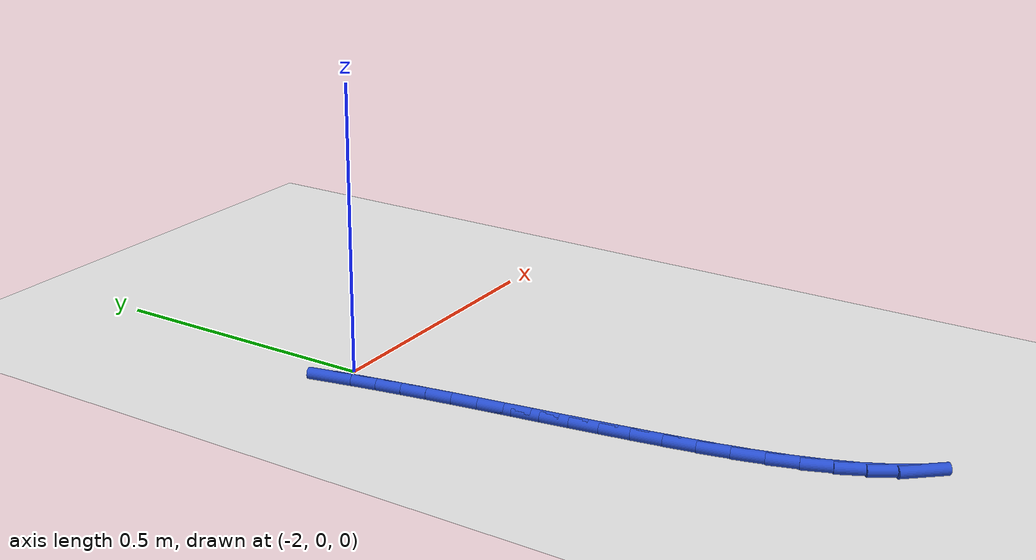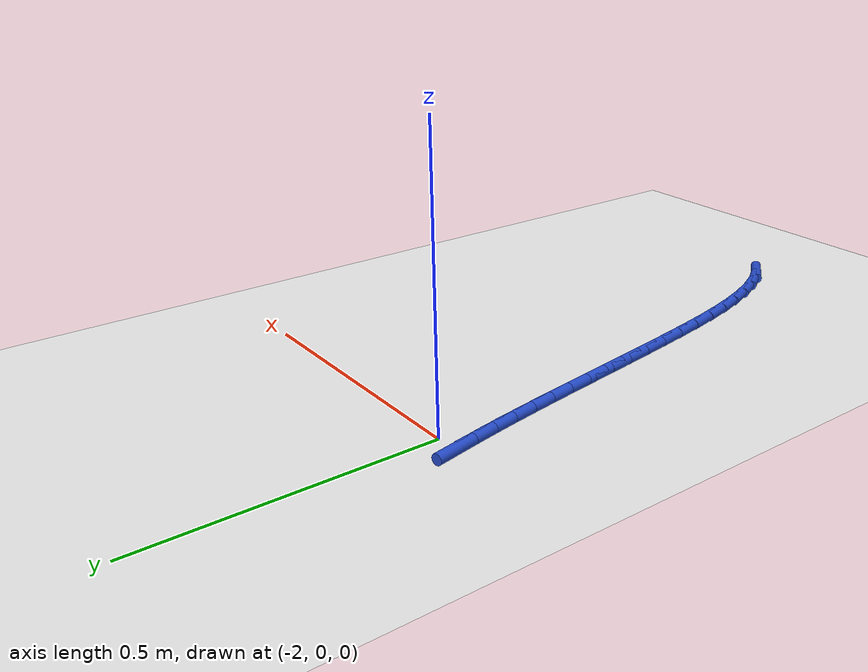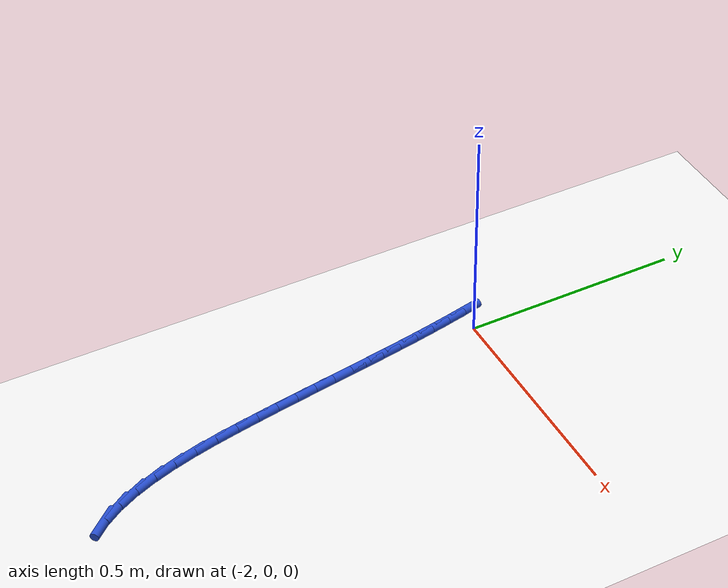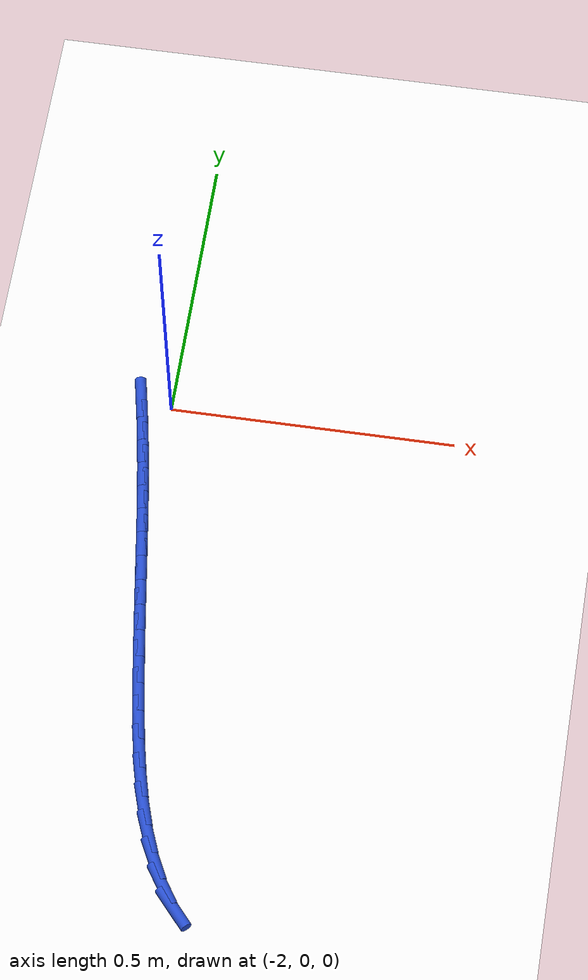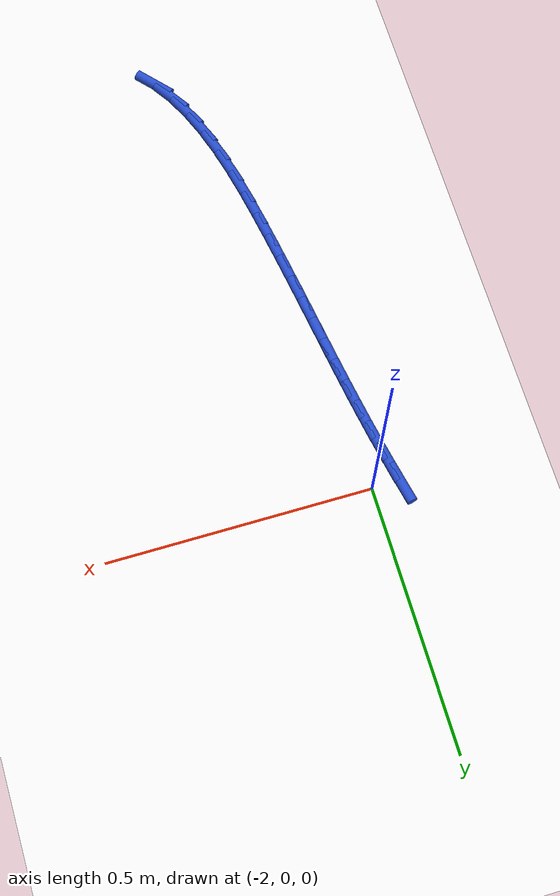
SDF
<sdf version="1.6">
 <world name="default">
  <model name="ground_plane">
   <static>1</static>
   <link name="link">
    <collision name="collision">
     <geometry><plane><normal>0 0 1</normal><size>100 100</size></plane></geometry>
     <surface><friction><ode><mu>100</mu><mu2>50</mu2></ode></friction></surface>
    </collision>
    <visual name="visual">
     <cast_shadows>0</cast_shadows>
     <geometry><plane><normal>0 0 1</normal><size>100 100</size></plane></geometry>
     <material>
      <script><uri>file://media/materials/scripts/gazebo.material</uri><name>Gazebo/WhiteGlow</name></script>
     </material>
    </visual>
   </link>
  </model>
  <model name="line">
   <link name="link_81">
    <pose>-2.0534396047391534 0.007192164463672855 0.01 0 1.57 -1.3655904365540195</pose>
    <collision name="collision">
     <geometry><cylinder><radius>0.01</radius><length>0.08</length></cylinder></geometry>
    </collision>
    <visual name="visual">
     <material>
      <script><name>Gazebo/Blue</name><uri>file://media/materials/scripts/gazebo.material</uri></script>
     </material>
     <geometry><cylinder><radius>0.01</radius><length>0.08</length></cylinder></geometry>
    </visual>
   </link>
   <link name="link_82">
    <pose>-2.044199597438086 -0.03720200226369862 0.01 0 1.57 -1.381125247913184</pose>
    <collision name="collision">
     <geometry><cylinder><radius>0.01</radius><length>0.08</length></cylinder></geometry>
    </collision>
    <visual name="visual">
     <material>
      <script><name>Gazebo/Blue</name><uri>file://media/materials/scripts/gazebo.material</uri></script>
     </material>
     <geometry><cylinder><radius>0.01</radius><length>0.08</length></cylinder></geometry>
    </visual>
   </link>
   <link name="link_83">
    <pose>-2.035672873930345 -0.08161693110765009 0.01 0 1.57 -1.3944435489759759</pose>
    <collision name="collision">
     <geometry><cylinder><radius>0.01</radius><length>0.08</length></cylinder></geometry>
    </collision>
    <visual name="visual">
     <material>
      <script><name>Gazebo/Blue</name><uri>file://media/materials/scripts/gazebo.material</uri></script>
     </material>
     <geometry><cylinder><radius>0.01</radius><length>0.08</length></cylinder></geometry>
    </visual>
   </link>
   <link name="link_84">
    <pose>-2.027736013886709 -0.12615498407838283 0.01 0 1.57 -1.405434057671806</pose>
    <collision name="collision">
     <geometry><cylinder><radius>0.01</radius><length>0.08</length></cylinder></geometry>
    </collision>
    <visual name="visual">
     <material>
      <script><name>Gazebo/Blue</name><uri>file://media/materials/scripts/gazebo.material</uri></script>
     </material>
     <geometry><cylinder><radius>0.01</radius><length>0.08</length></cylinder></geometry>
    </visual>
   </link>
   <link name="link_85">
    <pose>-2.0202655969779606 -0.1709185231860973 0.01 0 1.57 -1.4140278137770619</pose>
    <collision name="collision">
     <geometry><cylinder><radius>0.01</radius><length>0.08</length></cylinder></geometry>
    </collision>
    <visual name="visual">
     <material>
      <script><name>Gazebo/Blue</name><uri>file://media/materials/scripts/gazebo.material</uri></script>
     </material>
     <geometry><cylinder><radius>0.01</radius><length>0.08</length></cylinder></geometry>
    </visual>
   </link>
   <link name="link_86">
    <pose>-2.0131382028748788 -0.21600991044099396 0.01 0 1.57 -1.4201977074869372</pose>
    <collision name="collision">
     <geometry><cylinder><radius>0.01</radius><length>0.08</length></cylinder></geometry>
    </collision>
    <visual name="visual">
     <material>
      <script><name>Gazebo/Blue</name><uri>file://media/materials/scripts/gazebo.material</uri></script>
     </material>
     <geometry><cylinder><radius>0.01</radius><length>0.08</length></cylinder></geometry>
    </visual>
   </link>
   <link name="link_87">
    <pose>-2.006230411248243 -0.26153150785327395 0.01 0 1.57 -1.4239565959583875</pose>
    <collision name="collision">
     <geometry><cylinder><radius>0.01</radius><length>0.08</length></cylinder></geometry>
    </collision>
    <visual name="visual">
     <material>
      <script><name>Gazebo/Blue</name><uri>file://media/materials/scripts/gazebo.material</uri></script>
     </material>
     <geometry><cylinder><radius>0.01</radius><length>0.08</length></cylinder></geometry>
    </visual>
   </link>
   <link name="link_88">
    <pose>-1.9994188017688346 -0.3075856774331362 0.01 0 1.57 -1.4253542988864354</pose>
    <collision name="collision">
     <geometry><cylinder><radius>0.01</radius><length>0.08</length></cylinder></geometry>
    </collision>
    <visual name="visual">
     <material>
      <script><name>Gazebo/Blue</name><uri>file://media/materials/scripts/gazebo.material</uri></script>
     </material>
     <geometry><cylinder><radius>0.01</radius><length>0.08</length></cylinder></geometry>
    </visual>
   </link>
   <link name="link_89">
    <pose>-1.9925799541074334 -0.35427478119078204 0.01 0 1.57 -1.4244737642878313</pose>
    <collision name="collision">
     <geometry><cylinder><radius>0.01</radius><length>0.08</length></cylinder></geometry>
    </collision>
    <visual name="visual">
     <material>
      <script><name>Gazebo/Blue</name><uri>file://media/materials/scripts/gazebo.material</uri></script>
     </material>
     <geometry><cylinder><radius>0.01</radius><length>0.08</length></cylinder></geometry>
    </visual>
   </link>
   <link name="link_90">
    <pose>-1.985590447934819 -0.4017011811364116 0.01 0 1.57 -1.421426670872112</pose>
    <collision name="collision">
     <geometry><cylinder><radius>0.01</radius><length>0.08</length></cylinder></geometry>
    </collision>
    <visual name="visual">
     <material>
      <script><name>Gazebo/Blue</name><uri>file://media/materials/scripts/gazebo.material</uri></script>
     </material>
     <geometry><cylinder><radius>0.01</radius><length>0.08</length></cylinder></geometry>
    </visual>
   </link>
   <link name="link_91">
    <pose>-1.9783268629217723 -0.4499672392802257 0.01 0 1.57 -1.4163486968567365</pose>
    <collision name="collision">
     <geometry><cylinder><radius>0.01</radius><length>0.08</length></cylinder></geometry>
    </collision>
    <visual name="visual">
     <material>
      <script><name>Gazebo/Blue</name><uri>file://media/materials/scripts/gazebo.material</uri></script>
     </material>
     <geometry><cylinder><radius>0.01</radius><length>0.08</length></cylinder></geometry>
    </visual>
   </link>
   <link name="link_92">
    <pose>-1.970665778739073 -0.49917531763242534 0.01 0 1.57 -1.4093946470042429</pose>
    <collision name="collision">
     <geometry><cylinder><radius>0.01</radius><length>0.08</length></cylinder></geometry>
    </collision>
    <visual name="visual">
     <material>
      <script><name>Gazebo/Blue</name><uri>file://media/materials/scripts/gazebo.material</uri></script>
     </material>
     <geometry><cylinder><radius>0.01</radius><length>0.08</length></cylinder></geometry>
    </visual>
   </link>
   <link name="link_93">
    <pose>-1.962483775057501 -0.5494277782032095 0.01 0 1.57 -1.399506362370498</pose>
    <collision name="collision">
     <geometry><cylinder><radius>0.01</radius><length>0.08</length></cylinder></geometry>
    </collision>
    <visual name="visual">
     <material>
      <script><name>Gazebo/Blue</name><uri>file://media/materials/scripts/gazebo.material</uri></script>
     </material>
     <geometry><cylinder><radius>0.01</radius><length>0.08</length></cylinder></geometry>
    </visual>
   </link>
   <link name="link_94">
    <pose>-1.9536160949088475 -0.6006904625494014 0.01 0 1.57 -1.3814141704852922</pose>
    <collision name="collision">
     <geometry><cylinder><radius>0.01</radius><length>0.08</length></cylinder></geometry>
    </collision>
    <visual name="visual">
     <material>
      <script><name>Gazebo/Blue</name><uri>file://media/materials/scripts/gazebo.material</uri></script>
     </material>
     <geometry><cylinder><radius>0.01</radius><length>0.08</length></cylinder></geometry>
    </visual>
   </link>
   <link name="link_95">
    <pose>-1.9437173566021355 -0.6523326719757379 0.01 0 1.57 -1.3532350472329695</pose>
    <collision name="collision">
     <geometry><cylinder><radius>0.01</radius><length>0.08</length></cylinder></geometry>
    </collision>
    <visual name="visual">
     <material>
      <script><name>Gazebo/Blue</name><uri>file://media/materials/scripts/gazebo.material</uri></script>
     </material>
     <geometry><cylinder><radius>0.01</radius><length>0.08</length></cylinder></geometry>
    </visual>
   </link>
   <link name="link_96">
    <pose>-1.9323928562752772 -0.7035608139154147 0.01 0 1.57 -1.3138151033967536</pose>
    <collision name="collision">
     <geometry><cylinder><radius>0.01</radius><length>0.08</length></cylinder></geometry>
    </collision>
    <visual name="visual">
     <material>
      <script><name>Gazebo/Blue</name><uri>file://media/materials/scripts/gazebo.material</uri></script>
     </material>
     <geometry><cylinder><radius>0.01</radius><length>0.08</length></cylinder></geometry>
    </visual>
   </link>
   <link name="link_97">
    <pose>-1.9192478889119724 -0.7535812919896606 0.01 0 1.57 -1.2612069243431632</pose>
    <collision name="collision">
     <geometry><cylinder><radius>0.01</radius><length>0.08</length></cylinder></geometry>
    </collision>
    <visual name="visual">
     <material>
      <script><name>Gazebo/Blue</name><uri>file://media/materials/scripts/gazebo.material</uri></script>
     </material>
     <geometry><cylinder><radius>0.01</radius><length>0.08</length></cylinder></geometry>
    </visual>
   </link>
   <link name="link_98">
    <pose>-1.9038877494959205 -0.8016005098197068 0.01 0 1.57 -1.1925742919951654</pose>
    <collision name="collision">
     <geometry><cylinder><radius>0.01</radius><length>0.08</length></cylinder></geometry>
    </collision>
    <visual name="visual">
     <material>
      <script><name>Gazebo/Blue</name><uri>file://media/materials/scripts/gazebo.material</uri></script>
     </material>
     <geometry><cylinder><radius>0.01</radius><length>0.08</length></cylinder></geometry>
    </visual>
   </link>
   <link name="link_99">
    <pose>-1.8859177330108192 -0.8468248710267829 0.01 0 1.57 -1.1041434538485544</pose>
    <collision name="collision">
     <geometry><cylinder><radius>0.01</radius><length>0.08</length></cylinder></geometry>
    </collision>
    <visual name="visual">
     <material>
      <script><name>Gazebo/Blue</name><uri>file://media/materials/scripts/gazebo.material</uri></script>
     </material>
     <geometry><cylinder><radius>0.01</radius><length>0.08</length></cylinder></geometry>
    </visual>
   </link>
   <link name="link_100">
    <pose>-1.8649431344403693 -0.8884607792321201 0.01 0 1.57 -0.9914288974655863</pose>
    <collision name="collision">
     <geometry><cylinder><radius>0.01</radius><length>0.08</length></cylinder></geometry>
    </collision>
    <visual name="visual">
     <material>
      <script><name>Gazebo/Blue</name><uri>file://media/materials/scripts/gazebo.material</uri></script>
     </material>
     <geometry><cylinder><radius>0.01</radius><length>0.08</length></cylinder></geometry>
    </visual>
   </link>
   <link name="link_101">
    <pose>-1.8405692487682674 -0.9257146380569486 0.01 0 1.57 -0.8502132893631668</pose>
    <collision name="collision">
     <geometry><cylinder><radius>0.01</radius><length>0.08</length></cylinder></geometry>
    </collision>
    <visual name="visual">
     <material>
      <script><name>Gazebo/Blue</name><uri>file://media/materials/scripts/gazebo.material</uri></script>
     </material>
     <geometry><cylinder><radius>0.01</radius><length>0.08</length></cylinder></geometry>
    </visual>
   </link>
  </model>
 </world>
</sdf>
